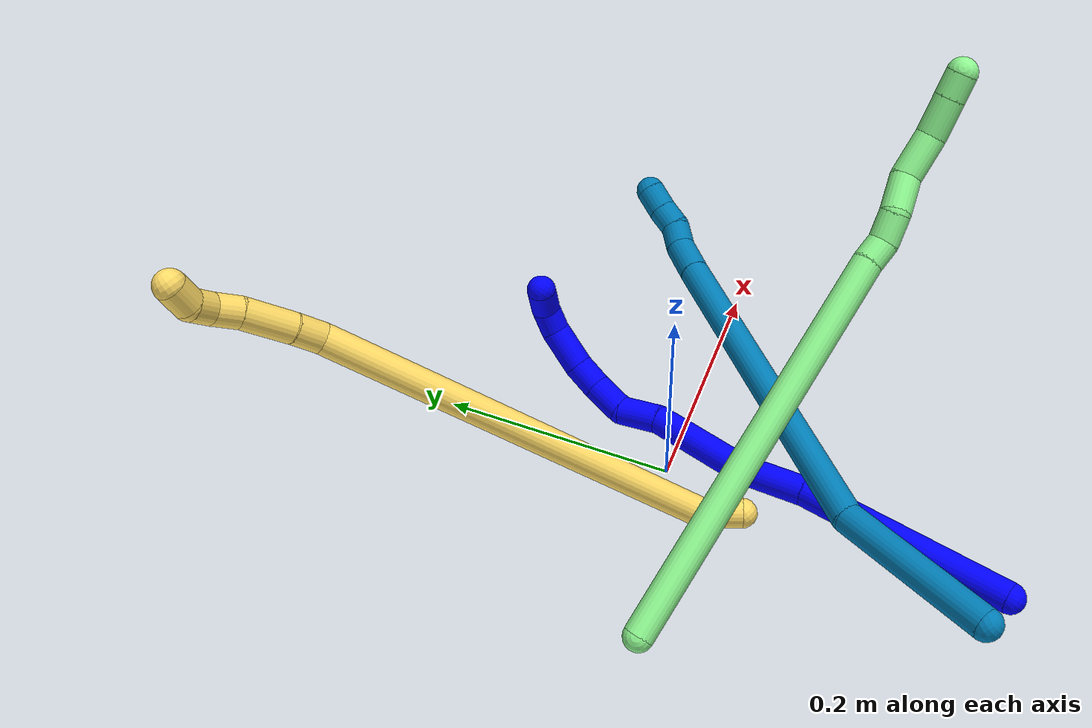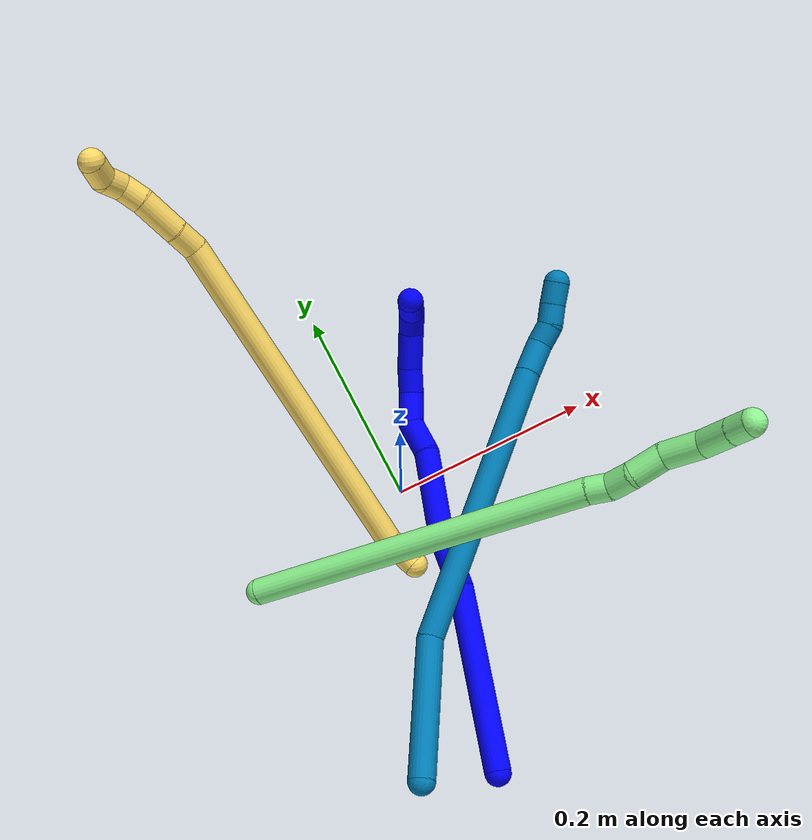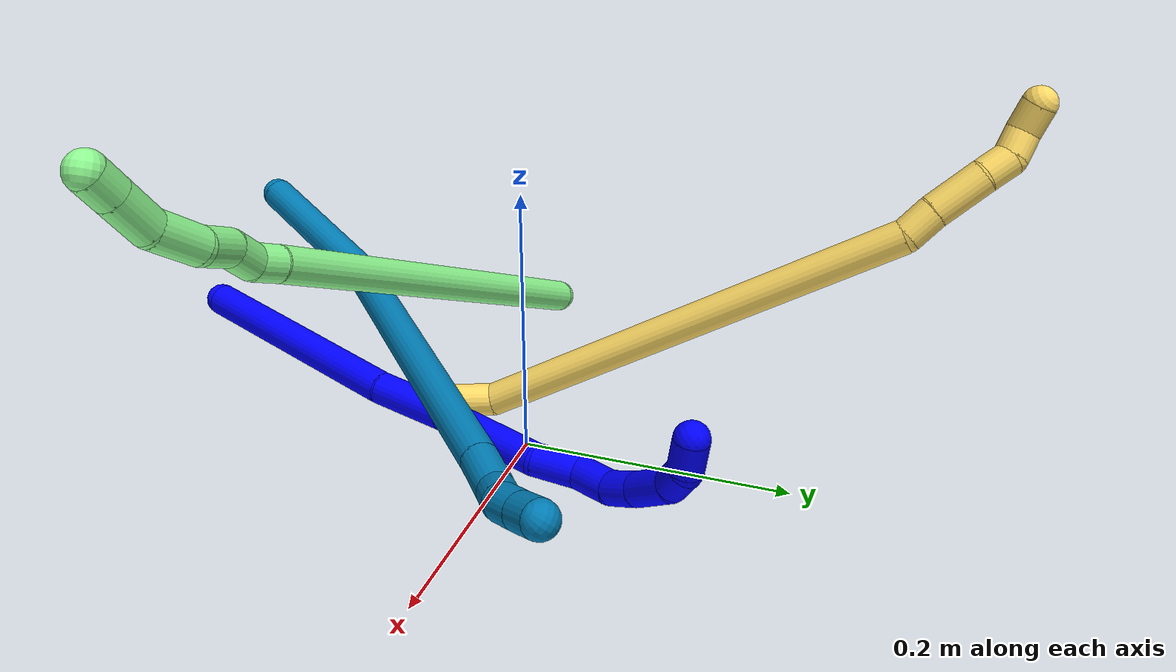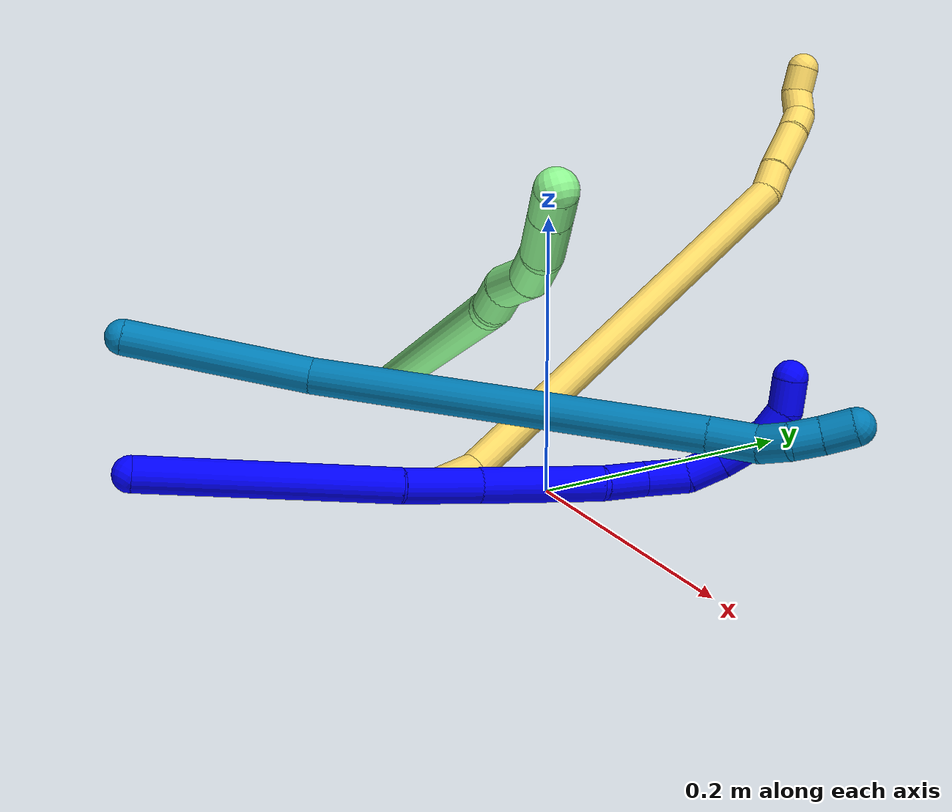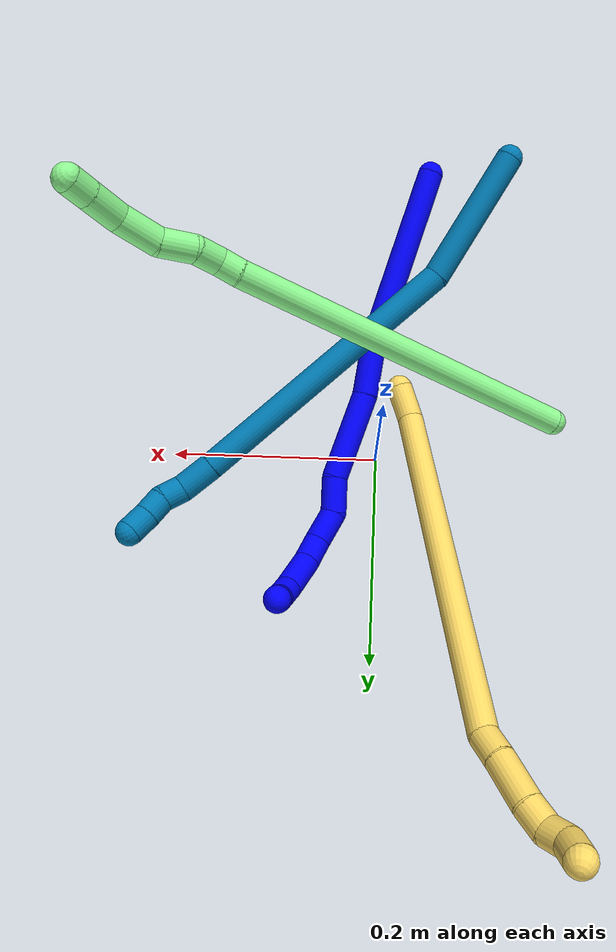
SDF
<sdf version="1.7">
 <world name="default">
  <model name="photoneo_s_sensor">
   <static>1</static>
   <pose>0 0 2 1.57079 1.57079 3.14159</pose>
   <link name="link">
    <inertial><mass>0.1</mass></inertial>
    <sensor name="sensor" type="depth">
     <update_rate>30</update_rate>
     <camera>
      <horizontal_fov>1.22</horizontal_fov>
      <image><width>1920</width><height>1200</height><format>B8G8R8</format></image>
      <clip><near>0.1</near><far>4</far></clip>
      <depth_camera><output>points</output></depth_camera>
     </camera>
     <plugin name="camera_plugin" filename="libgazebo_ros_depth_camera.so">
      <baseline>0.2</baseline>
      <alwaysOn>1</alwaysOn>
      <updateRate>0.0</updateRate>
      <cameraName>camera_ir</cameraName>
      <imageTopicName>/camera/color/image_raw</imageTopicName>
      <cameraInfoTopicName>/camera/color/camera_info</cameraInfoTopicName>
      <depthImageTopicName>/camera/depth/image_raw</depthImageTopicName>
      <depthImageCameraInfoTopicName>/camera/depth/camera_info</depthImageCameraInfoTopicName>
      <pointCloudTopicName>/camera/depth/points</pointCloudTopicName>
      <frameName>fr_optical</frameName>
      <pointCloudCutoff>0.1</pointCloudCutoff>
      <pointCloudCutoffMax>2.0</pointCloudCutoffMax>
      <distortionK1>0</distortionK1>
      <distortionK2>0</distortionK2>
      <distortionK3>0</distortionK3>
      <distortionT1>0</distortionT1>
      <distortionT2>0</distortionT2>
      <CxPrime>0</CxPrime>
      <Cx>0</Cx>
      <Cy>0</Cy>
      <focalLength>0</focalLength>
      <hackBaseline>0</hackBaseline>
     </plugin>
    </sensor>
   </link>
  </model>
  <model name="bin">
   <static>1</static>
   <link name="bottom">
    <collision name="collision-bottom">
     <pose>0 0 -0.01 0 -0 0</pose>
     <geometry><box><size>0.8 0.6 0.02</size></box></geometry>
     <surface>
      <friction><ode><mu>100</mu><mu2>100</mu2></ode></friction>
      <contact><collide_bitmask>65535</collide_bitmask></contact>
     </surface>
    </collision>
   </link>
   <link name="west_wall">
    <collision name="collision-west_wall">
     <pose>-0.41 0 0.1 0 -0 0</pose>
     <geometry><box><size>0.02 0.6 0.2</size></box></geometry>
     <surface>
      <friction><ode><mu>100</mu><mu2>100</mu2></ode></friction>
      <contact><collide_bitmask>65535</collide_bitmask></contact>
     </surface>
    </collision>
   </link>
   <link name="east_wall">
    <collision name="collision-east_wall">
     <pose>0.41 0 0.1 0 -0 0</pose>
     <geometry><box><size>0.02 0.6 0.2</size></box></geometry>
     <surface>
      <friction><ode><mu>100</mu><mu2>100</mu2></ode></friction>
      <contact><collide_bitmask>65535</collide_bitmask></contact>
     </surface>
    </collision>
   </link>
   <link name="south_wall">
    <collision name="collision-south_wall">
     <pose>0 -0.31 0.1 0 -0 0</pose>
     <geometry><box><size>0.8 0.02 0.2</size></box></geometry>
     <surface>
      <friction><ode><mu>100</mu><mu2>100</mu2></ode></friction>
      <contact><collide_bitmask>65535</collide_bitmask></contact>
     </surface>
    </collision>
   </link>
   <link name="north_wall">
    <collision name="collision-north_wall">
     <pose>0 0.31 0.1 0 -0 0</pose>
     <geometry><box><size>0.8 0.02 0.2</size></box></geometry>
     <surface>
      <friction><ode><mu>100</mu><mu2>100</mu2></ode></friction>
      <contact><collide_bitmask>65535</collide_bitmask></contact>
     </surface>
    </collision>
   </link>
  </model>
  <model name="1">
   <static>0</static>
   <link name="1">
    <collision name="collision-cylinder-e_1_1_4">
     <pose>0.020913 0.074035 -0.047108 -2.13747 0.233951 -0.421746</pose>
     <geometry><cylinder><radius>0.0125</radius><length>0.180419</length></cylinder></geometry>
     <surface>
      <friction><ode><mu>1.16</mu><mu2>1.16</mu2><slip1>0</slip1><slip2>0</slip2></ode></friction>
      <contact><ode><kp>1e+06</kp><kd>1</kd><max_vel>0</max_vel><min_depth>0.001</min_depth></ode></contact>
     </surface>
    </collision>
    <visual name="visual-cylinder-e_1_1_4">
     <pose>0.020913 0.074035 -0.047108 -2.13747 0.233951 -0.421746</pose>
     <geometry><cylinder><radius>0.0125</radius><length>0.180419</length></cylinder></geometry>
     <material><ambient>0 0 1 1</ambient></material>
    </visual>
    <collision name="collision-cylinder-e_2_4_5">
     <pose>0.051817 0.16908 -0.110499 -2.23011 0.359557 -0.71013</pose>
     <geometry><cylinder><radius>0.0125</radius><length>0.056792</length></cylinder></geometry>
     <surface>
      <friction><ode><mu>1.16</mu><mu2>1.16</mu2><slip1>0</slip1><slip2>0</slip2></ode></friction>
      <contact><ode><kp>1e+06</kp><kd>1</kd><max_vel>0</max_vel><min_depth>0.001</min_depth></ode></contact>
     </surface>
    </collision>
    <visual name="visual-cylinder-e_2_4_5">
     <pose>0.051817 0.16908 -0.110499 -2.23011 0.359557 -0.71013</pose>
     <geometry><cylinder><radius>0.0125</radius><length>0.056792</length></cylinder></geometry>
     <material><ambient>0 0 1 1</ambient></material>
    </visual>
    <collision name="collision-cylinder-e_3_5_6">
     <pose>0.069353 0.225449 -0.151511 -2.18111 0.173112 -0.330122</pose>
     <geometry><cylinder><radius>0.0125</radius><length>0.087609</length></cylinder></geometry>
     <surface>
      <friction><ode><mu>1.16</mu><mu2>1.16</mu2><slip1>0</slip1><slip2>0</slip2></ode></friction>
      <contact><ode><kp>1e+06</kp><kd>1</kd><max_vel>0</max_vel><min_depth>0.001</min_depth></ode></contact>
     </surface>
    </collision>
    <visual name="visual-cylinder-e_3_5_6">
     <pose>0.069353 0.225449 -0.151511 -2.18111 0.173112 -0.330122</pose>
     <geometry><cylinder><radius>0.0125</radius><length>0.087609</length></cylinder></geometry>
     <material><ambient>0 0 1 1</ambient></material>
    </visual>
    <collision name="collision-cylinder-e_4_6_7">
     <pose>0.084225 0.271859 -0.18739 -2.36069 0.436683 -0.988849</pose>
     <geometry><cylinder><radius>0.0125</radius><length>0.034646</length></cylinder></geometry>
     <surface>
      <friction><ode><mu>1.16</mu><mu2>1.16</mu2><slip1>0</slip1><slip2>0</slip2></ode></friction>
      <contact><ode><kp>1e+06</kp><kd>1</kd><max_vel>0</max_vel><min_depth>0.001</min_depth></ode></contact>
     </surface>
    </collision>
    <visual name="visual-cylinder-e_4_6_7">
     <pose>0.084225 0.271859 -0.18739 -2.36069 0.436683 -0.988849</pose>
     <geometry><cylinder><radius>0.0125</radius><length>0.034646</length></cylinder></geometry>
     <material><ambient>0 0 1 1</ambient></material>
    </visual>
    <collision name="collision-cylinder-e_5_7_8">
     <pose>0.090918 0.295934 -0.20763 -2.18011 -0.039903 0.076481</pose>
     <geometry><cylinder><radius>0.0125</radius><length>0.031793</length></cylinder></geometry>
     <surface>
      <friction><ode><mu>1.16</mu><mu2>1.16</mu2><slip1>0</slip1><slip2>0</slip2></ode></friction>
      <contact><ode><kp>1e+06</kp><kd>1</kd><max_vel>0</max_vel><min_depth>0.001</min_depth></ode></contact>
     </surface>
    </collision>
    <visual name="visual-cylinder-e_5_7_8">
     <pose>0.090918 0.295934 -0.20763 -2.18011 -0.039903 0.076481</pose>
     <geometry><cylinder><radius>0.0125</radius><length>0.031793</length></cylinder></geometry>
     <material><ambient>0 0 1 1</ambient></material>
    </visual>
    <collision name="collision-cylinder-e_6_8_9">
     <pose>0.087761 0.316705 -0.226557 -2.47457 -0.198856 0.560708</pose>
     <geometry><cylinder><radius>0.0125</radius><length>0.025543</length></cylinder></geometry>
     <surface>
      <friction><ode><mu>1.16</mu><mu2>1.16</mu2><slip1>0</slip1><slip2>0</slip2></ode></friction>
      <contact><ode><kp>1e+06</kp><kd>1</kd><max_vel>0</max_vel><min_depth>0.001</min_depth></ode></contact>
     </surface>
    </collision>
    <visual name="visual-cylinder-e_6_8_9">
     <pose>0.087761 0.316705 -0.226557 -2.47457 -0.198856 0.560708</pose>
     <geometry><cylinder><radius>0.0125</radius><length>0.025543</length></cylinder></geometry>
     <material><ambient>0 0 1 1</ambient></material>
    </visual>
    <collision name="collision-cylinder-e_7_9_10">
     <pose>0.078616 0.333956 -0.250869 -2.56055 -0.365191 1.10654</pose>
     <geometry><cylinder><radius>0.0125</radius><length>0.03708</length></cylinder></geometry>
     <surface>
      <friction><ode><mu>1.16</mu><mu2>1.16</mu2><slip1>0</slip1><slip2>0</slip2></ode></friction>
      <contact><ode><kp>1e+06</kp><kd>1</kd><max_vel>0</max_vel><min_depth>0.001</min_depth></ode></contact>
     </surface>
    </collision>
    <visual name="visual-cylinder-e_7_9_10">
     <pose>0.078616 0.333956 -0.250869 -2.56055 -0.365191 1.10654</pose>
     <geometry><cylinder><radius>0.0125</radius><length>0.03708</length></cylinder></geometry>
     <material><ambient>0 0 1 1</ambient></material>
    </visual>
    <collision name="collision-cylinder-e_8_10_11">
     <pose>0.06613 0.345325 -0.274194 -2.93399 -0.575356 2.46454</pose>
     <geometry><cylinder><radius>0.0125</radius><length>0.021558</length></cylinder></geometry>
     <surface>
      <friction><ode><mu>1.16</mu><mu2>1.16</mu2><slip1>0</slip1><slip2>0</slip2></ode></friction>
      <contact><ode><kp>1e+06</kp><kd>1</kd><max_vel>0</max_vel><min_depth>0.001</min_depth></ode></contact>
     </surface>
    </collision>
    <visual name="visual-cylinder-e_8_10_11">
     <pose>0.06613 0.345325 -0.274194 -2.93399 -0.575356 2.46454</pose>
     <geometry><cylinder><radius>0.0125</radius><length>0.021558</length></cylinder></geometry>
     <material><ambient>0 0 1 1</ambient></material>
    </visual>
    <collision name="collision-cylinder-e_9_11_2">
     <pose>0.053005 0.343314 -0.292157 2.73957 -0.63258 -2.02786</pose>
     <geometry><cylinder><radius>0.0125</radius><length>0.02456</length></cylinder></geometry>
     <surface>
      <friction><ode><mu>1.16</mu><mu2>1.16</mu2><slip1>0</slip1><slip2>0</slip2></ode></friction>
      <contact><ode><kp>1e+06</kp><kd>1</kd><max_vel>0</max_vel><min_depth>0.001</min_depth></ode></contact>
     </surface>
    </collision>
    <visual name="visual-cylinder-e_9_11_2">
     <pose>0.053005 0.343314 -0.292157 2.73957 -0.63258 -2.02786</pose>
     <geometry><cylinder><radius>0.0125</radius><length>0.02456</length></cylinder></geometry>
     <material><ambient>0 0 1 1</ambient></material>
    </visual>
    <collision name="collision-sphere-2">
     <pose>0.045744 0.339439 -0.301272 0 -0 0</pose>
     <geometry><sphere><radius>0.0125</radius></sphere></geometry>
     <surface>
      <friction><ode><mu>1.16</mu><mu2>1.16</mu2><slip1>0</slip1><slip2>0</slip2></ode></friction>
      <contact><ode><kp>1e+06</kp><kd>1</kd><max_vel>0</max_vel><min_depth>0.001</min_depth></ode></contact>
     </surface>
    </collision>
    <visual name="visual-sphere-2">
     <pose>0.045744 0.339439 -0.301272 0 -0 0</pose>
     <geometry><sphere><radius>0.0125</radius></sphere></geometry>
     <material><ambient>0 0 1 1</ambient></material>
    </visual>
    <collision name="collision-sphere-11">
     <pose>0.060265 0.347189 -0.283043 0 -0 0</pose>
     <geometry><sphere><radius>0.0125</radius></sphere></geometry>
     <surface>
      <friction><ode><mu>1.16</mu><mu2>1.16</mu2><slip1>0</slip1><slip2>0</slip2></ode></friction>
      <contact><ode><kp>1e+06</kp><kd>1</kd><max_vel>0</max_vel><min_depth>0.001</min_depth></ode></contact>
     </surface>
    </collision>
    <visual name="visual-sphere-11">
     <pose>0.060265 0.347189 -0.283043 0 -0 0</pose>
     <geometry><sphere><radius>0.0125</radius></sphere></geometry>
     <material><ambient>0 0 1 1</ambient></material>
    </visual>
    <collision name="collision-sphere-10">
     <pose>0.071995 0.343461 -0.265344 0 -0 0</pose>
     <geometry><sphere><radius>0.0125</radius></sphere></geometry>
     <surface>
      <friction><ode><mu>1.16</mu><mu2>1.16</mu2><slip1>0</slip1><slip2>0</slip2></ode></friction>
      <contact><ode><kp>1e+06</kp><kd>1</kd><max_vel>0</max_vel><min_depth>0.001</min_depth></ode></contact>
     </surface>
    </collision>
    <visual name="visual-sphere-10">
     <pose>0.071995 0.343461 -0.265344 0 -0 0</pose>
     <geometry><sphere><radius>0.0125</radius></sphere></geometry>
     <material><ambient>0 0 1 1</ambient></material>
    </visual>
    <collision name="collision-sphere-9">
     <pose>0.085238 0.32445 -0.236393 0 -0 0</pose>
     <geometry><sphere><radius>0.0125</radius></sphere></geometry>
     <surface>
      <friction><ode><mu>1.16</mu><mu2>1.16</mu2><slip1>0</slip1><slip2>0</slip2></ode></friction>
      <contact><ode><kp>1e+06</kp><kd>1</kd><max_vel>0</max_vel><min_depth>0.001</min_depth></ode></contact>
     </surface>
    </collision>
    <visual name="visual-sphere-9">
     <pose>0.085238 0.32445 -0.236393 0 -0 0</pose>
     <geometry><sphere><radius>0.0125</radius></sphere></geometry>
     <material><ambient>0 0 1 1</ambient></material>
    </visual>
    <collision name="collision-sphere-4">
     <pose>0.041825 0.148071 -0.094216 0 -0 0</pose>
     <geometry><sphere><radius>0.0125</radius></sphere></geometry>
     <surface>
      <friction><ode><mu>1.16</mu><mu2>1.16</mu2><slip1>0</slip1><slip2>0</slip2></ode></friction>
      <contact><ode><kp>1e+06</kp><kd>1</kd><max_vel>0</max_vel><min_depth>0.001</min_depth></ode></contact>
     </surface>
    </collision>
    <visual name="visual-sphere-4">
     <pose>0.041825 0.148071 -0.094216 0 -0 0</pose>
     <geometry><sphere><radius>0.0125</radius></sphere></geometry>
     <material><ambient>0 0 1 1</ambient></material>
    </visual>
    <collision name="collision-sphere-1">
     <geometry><sphere><radius>0.0125</radius></sphere></geometry>
     <surface>
      <friction><ode><mu>1.16</mu><mu2>1.16</mu2><slip1>0</slip1><slip2>0</slip2></ode></friction>
      <contact><ode><kp>1e+06</kp><kd>1</kd><max_vel>0</max_vel><min_depth>0.001</min_depth></ode></contact>
     </surface>
    </collision>
    <visual name="visual-sphere-1">
     <geometry><sphere><radius>0.0125</radius></sphere></geometry>
     <material><ambient>0 0 1 1</ambient></material>
    </visual>
    <collision name="collision-sphere-8">
     <pose>0.090283 0.30896 -0.216721 0 -0 0</pose>
     <geometry><sphere><radius>0.0125</radius></sphere></geometry>
     <surface>
      <friction><ode><mu>1.16</mu><mu2>1.16</mu2><slip1>0</slip1><slip2>0</slip2></ode></friction>
      <contact><ode><kp>1e+06</kp><kd>1</kd><max_vel>0</max_vel><min_depth>0.001</min_depth></ode></contact>
     </surface>
    </collision>
    <visual name="visual-sphere-8">
     <pose>0.090283 0.30896 -0.216721 0 -0 0</pose>
     <geometry><sphere><radius>0.0125</radius></sphere></geometry>
     <material><ambient>0 0 1 1</ambient></material>
    </visual>
    <collision name="collision-sphere-5">
     <pose>0.061808 0.19009 -0.126781 0 -0 0</pose>
     <geometry><sphere><radius>0.0125</radius></sphere></geometry>
     <surface>
      <friction><ode><mu>1.16</mu><mu2>1.16</mu2><slip1>0</slip1><slip2>0</slip2></ode></friction>
      <contact><ode><kp>1e+06</kp><kd>1</kd><max_vel>0</max_vel><min_depth>0.001</min_depth></ode></contact>
     </surface>
    </collision>
    <visual name="visual-sphere-5">
     <pose>0.061808 0.19009 -0.126781 0 -0 0</pose>
     <geometry><sphere><radius>0.0125</radius></sphere></geometry>
     <material><ambient>0 0 1 1</ambient></material>
    </visual>
    <collision name="collision-sphere-6">
     <pose>0.076899 0.260809 -0.176241 0 -0 0</pose>
     <geometry><sphere><radius>0.0125</radius></sphere></geometry>
     <surface>
      <friction><ode><mu>1.16</mu><mu2>1.16</mu2><slip1>0</slip1><slip2>0</slip2></ode></friction>
      <contact><ode><kp>1e+06</kp><kd>1</kd><max_vel>0</max_vel><min_depth>0.001</min_depth></ode></contact>
     </surface>
    </collision>
    <visual name="visual-sphere-6">
     <pose>0.076899 0.260809 -0.176241 0 -0 0</pose>
     <geometry><sphere><radius>0.0125</radius></sphere></geometry>
     <material><ambient>0 0 1 1</ambient></material>
    </visual>
    <collision name="collision-sphere-7">
     <pose>0.091552 0.282909 -0.19854 0 -0 0</pose>
     <geometry><sphere><radius>0.0125</radius></sphere></geometry>
     <surface>
      <friction><ode><mu>1.16</mu><mu2>1.16</mu2><slip1>0</slip1><slip2>0</slip2></ode></friction>
      <contact><ode><kp>1e+06</kp><kd>1</kd><max_vel>0</max_vel><min_depth>0.001</min_depth></ode></contact>
     </surface>
    </collision>
    <visual name="visual-sphere-7">
     <pose>0.091552 0.282909 -0.19854 0 -0 0</pose>
     <geometry><sphere><radius>0.0125</radius></sphere></geometry>
     <material><ambient>0 0 1 1</ambient></material>
    </visual>
    <inertial>
     <pose>0.052969 0.195775 -0.138635 0 -0 0</pose>
     <mass>0.5</mass>
     <inertia>
      <ixx>0.000295</ixx>
      <ixy>0</ixy>
      <ixz>0</ixz>
      <iyy>-0.000439</iyy>
      <iyz>0</iyz>
      <izz>-0.000631</izz>
     </inertia>
    </inertial>
   </link>
   <pose>-0.046843 -0.288503 0.053385 -2.59313 0.696119 2.65699</pose>
  </model>
  <model name="5">
   <static>0</static>
   <link name="5">
    <collision name="collision-cylinder-e_1_1_4">
     <pose>0.005775 0.013552 0.009584 -0.955265 0.33484 -0.174509</pose>
     <geometry><cylinder><radius>0.0125</radius><length>0.035149</length></cylinder></geometry>
     <surface>
      <friction><ode><mu>1.16</mu><mu2>1.16</mu2><slip1>0</slip1><slip2>0</slip2></ode></friction>
      <contact><ode><kp>1e+06</kp><kd>1</kd><max_vel>0</max_vel><min_depth>0.001</min_depth></ode></contact>
     </surface>
    </collision>
    <visual name="visual-cylinder-e_1_1_4">
     <pose>0.005775 0.013552 0.009584 -0.955265 0.33484 -0.174509</pose>
     <geometry><cylinder><radius>0.0125</radius><length>0.035149</length></cylinder></geometry>
     <material><ambient>1 0.858824 0.4 1</ambient></material>
    </visual>
    <collision name="collision-cylinder-e_2_4_5">
     <pose>0.023757 0.10857 0.165773 -0.507195 0.072651 -0.018837</pose>
     <geometry><cylinder><radius>0.0125</radius><length>0.336325</length></cylinder></geometry>
     <surface>
      <friction><ode><mu>1.16</mu><mu2>1.16</mu2><slip1>0</slip1><slip2>0</slip2></ode></friction>
      <contact><ode><kp>1e+06</kp><kd>1</kd><max_vel>0</max_vel><min_depth>0.001</min_depth></ode></contact>
     </surface>
    </collision>
    <visual name="visual-cylinder-e_2_4_5">
     <pose>0.023757 0.10857 0.165773 -0.507195 0.072651 -0.018837</pose>
     <geometry><cylinder><radius>0.0125</radius><length>0.336325</length></cylinder></geometry>
     <material><ambient>1 0.858824 0.4 1</ambient></material>
    </visual>
    <collision name="collision-cylinder-e_3_5_6">
     <pose>0.032212 0.19642 0.32211 -0.580571 -0.31177 0.093826</pose>
     <geometry><cylinder><radius>0.0125</radius><length>0.024458</length></cylinder></geometry>
     <surface>
      <friction><ode><mu>1.16</mu><mu2>1.16</mu2><slip1>0</slip1><slip2>0</slip2></ode></friction>
      <contact><ode><kp>1e+06</kp><kd>1</kd><max_vel>0</max_vel><min_depth>0.001</min_depth></ode></contact>
     </surface>
    </collision>
    <visual name="visual-cylinder-e_3_5_6">
     <pose>0.032212 0.19642 0.32211 -0.580571 -0.31177 0.093826</pose>
     <geometry><cylinder><radius>0.0125</radius><length>0.024458</length></cylinder></geometry>
     <material><ambient>1 0.858824 0.4 1</ambient></material>
    </visual>
    <collision name="collision-cylinder-e_4_6_7">
     <pose>0.024128 0.214593 0.347918 -0.632745 -0.214051 0.070313</pose>
     <geometry><cylinder><radius>0.0125</radius><length>0.040802</length></cylinder></geometry>
     <surface>
      <friction><ode><mu>1.16</mu><mu2>1.16</mu2><slip1>0</slip1><slip2>0</slip2></ode></friction>
      <contact><ode><kp>1e+06</kp><kd>1</kd><max_vel>0</max_vel><min_depth>0.001</min_depth></ode></contact>
     </surface>
    </collision>
    <visual name="visual-cylinder-e_4_6_7">
     <pose>0.024128 0.214593 0.347918 -0.632745 -0.214051 0.070313</pose>
     <geometry><cylinder><radius>0.0125</radius><length>0.040802</length></cylinder></geometry>
     <material><ambient>1 0.858824 0.4 1</ambient></material>
    </visual>
    <collision name="collision-cylinder-e_5_7_8">
     <pose>0.017345 0.233906 0.371385 -0.79431 -0.228176 0.096051</pose>
     <geometry><cylinder><radius>0.0125</radius><length>0.021652</length></cylinder></geometry>
     <surface>
      <friction><ode><mu>1.16</mu><mu2>1.16</mu2><slip1>0</slip1><slip2>0</slip2></ode></friction>
      <contact><ode><kp>1e+06</kp><kd>1</kd><max_vel>0</max_vel><min_depth>0.001</min_depth></ode></contact>
     </surface>
    </collision>
    <visual name="visual-cylinder-e_5_7_8">
     <pose>0.017345 0.233906 0.371385 -0.79431 -0.228176 0.096051</pose>
     <geometry><cylinder><radius>0.0125</radius><length>0.021652</length></cylinder></geometry>
     <material><ambient>1 0.858824 0.4 1</ambient></material>
    </visual>
    <collision name="collision-cylinder-e_6_8_9">
     <pose>0.008168 0.246129 0.384736 -0.667661 -0.725193 0.261636</pose>
     <geometry><cylinder><radius>0.0125</radius><length>0.020288</length></cylinder></geometry>
     <surface>
      <friction><ode><mu>1.16</mu><mu2>1.16</mu2><slip1>0</slip1><slip2>0</slip2></ode></friction>
      <contact><ode><kp>1e+06</kp><kd>1</kd><max_vel>0</max_vel><min_depth>0.001</min_depth></ode></contact>
     </surface>
    </collision>
    <visual name="visual-cylinder-e_6_8_9">
     <pose>0.008168 0.246129 0.384736 -0.667661 -0.725193 0.261636</pose>
     <geometry><cylinder><radius>0.0125</radius><length>0.020288</length></cylinder></geometry>
     <material><ambient>1 0.858824 0.4 1</ambient></material>
    </visual>
    <collision name="collision-cylinder-e_7_9_2">
     <pose>-0.003782 0.251834 0.399939 -0.108316 -0.511762 0.028363</pose>
     <geometry><cylinder><radius>0.0125</radius><length>0.021325</length></cylinder></geometry>
     <surface>
      <friction><ode><mu>1.16</mu><mu2>1.16</mu2><slip1>0</slip1><slip2>0</slip2></ode></friction>
      <contact><ode><kp>1e+06</kp><kd>1</kd><max_vel>0</max_vel><min_depth>0.001</min_depth></ode></contact>
     </surface>
    </collision>
    <visual name="visual-cylinder-e_7_9_2">
     <pose>-0.003782 0.251834 0.399939 -0.108316 -0.511762 0.028363</pose>
     <geometry><cylinder><radius>0.0125</radius><length>0.021325</length></cylinder></geometry>
     <material><ambient>1 0.858824 0.4 1</ambient></material>
    </visual>
    <collision name="collision-sphere-2">
     <pose>-0.009003 0.252839 0.409181 0 -0 0</pose>
     <geometry><sphere><radius>0.0125</radius></sphere></geometry>
     <surface>
      <friction><ode><mu>1.16</mu><mu2>1.16</mu2><slip1>0</slip1><slip2>0</slip2></ode></friction>
      <contact><ode><kp>1e+06</kp><kd>1</kd><max_vel>0</max_vel><min_depth>0.001</min_depth></ode></contact>
     </surface>
    </collision>
    <visual name="visual-sphere-2">
     <pose>-0.009003 0.252839 0.409181 0 -0 0</pose>
     <geometry><sphere><radius>0.0125</radius></sphere></geometry>
     <material><ambient>1 0.858824 0.4 1</ambient></material>
    </visual>
    <collision name="collision-sphere-9">
     <pose>0.00144 0.250829 0.390697 0 -0 0</pose>
     <geometry><sphere><radius>0.0125</radius></sphere></geometry>
     <surface>
      <friction><ode><mu>1.16</mu><mu2>1.16</mu2><slip1>0</slip1><slip2>0</slip2></ode></friction>
      <contact><ode><kp>1e+06</kp><kd>1</kd><max_vel>0</max_vel><min_depth>0.001</min_depth></ode></contact>
     </surface>
    </collision>
    <visual name="visual-sphere-9">
     <pose>0.00144 0.250829 0.390697 0 -0 0</pose>
     <geometry><sphere><radius>0.0125</radius></sphere></geometry>
     <material><ambient>1 0.858824 0.4 1</ambient></material>
    </visual>
    <collision name="collision-sphere-4">
     <pose>0.011551 0.027104 0.019168 0 -0 0</pose>
     <geometry><sphere><radius>0.0125</radius></sphere></geometry>
     <surface>
      <friction><ode><mu>1.16</mu><mu2>1.16</mu2><slip1>0</slip1><slip2>0</slip2></ode></friction>
      <contact><ode><kp>1e+06</kp><kd>1</kd><max_vel>0</max_vel><min_depth>0.001</min_depth></ode></contact>
     </surface>
    </collision>
    <visual name="visual-sphere-4">
     <pose>0.011551 0.027104 0.019168 0 -0 0</pose>
     <geometry><sphere><radius>0.0125</radius></sphere></geometry>
     <material><ambient>1 0.858824 0.4 1</ambient></material>
    </visual>
    <collision name="collision-sphere-1">
     <geometry><sphere><radius>0.0125</radius></sphere></geometry>
     <surface>
      <friction><ode><mu>1.16</mu><mu2>1.16</mu2><slip1>0</slip1><slip2>0</slip2></ode></friction>
      <contact><ode><kp>1e+06</kp><kd>1</kd><max_vel>0</max_vel><min_depth>0.001</min_depth></ode></contact>
     </surface>
    </collision>
    <visual name="visual-sphere-1">
     <geometry><sphere><radius>0.0125</radius></sphere></geometry>
     <material><ambient>1 0.858824 0.4 1</ambient></material>
    </visual>
    <collision name="collision-sphere-8">
     <pose>0.014896 0.241429 0.378775 0 -0 0</pose>
     <geometry><sphere><radius>0.0125</radius></sphere></geometry>
     <surface>
      <friction><ode><mu>1.16</mu><mu2>1.16</mu2><slip1>0</slip1><slip2>0</slip2></ode></friction>
      <contact><ode><kp>1e+06</kp><kd>1</kd><max_vel>0</max_vel><min_depth>0.001</min_depth></ode></contact>
     </surface>
    </collision>
    <visual name="visual-sphere-8">
     <pose>0.014896 0.241429 0.378775 0 -0 0</pose>
     <geometry><sphere><radius>0.0125</radius></sphere></geometry>
     <material><ambient>1 0.858824 0.4 1</ambient></material>
    </visual>
    <collision name="collision-sphere-5">
     <pose>0.035964 0.190036 0.312378 0 -0 0</pose>
     <geometry><sphere><radius>0.0125</radius></sphere></geometry>
     <surface>
      <friction><ode><mu>1.16</mu><mu2>1.16</mu2><slip1>0</slip1><slip2>0</slip2></ode></friction>
      <contact><ode><kp>1e+06</kp><kd>1</kd><max_vel>0</max_vel><min_depth>0.001</min_depth></ode></contact>
     </surface>
    </collision>
    <visual name="visual-sphere-5">
     <pose>0.035964 0.190036 0.312378 0 -0 0</pose>
     <geometry><sphere><radius>0.0125</radius></sphere></geometry>
     <material><ambient>1 0.858824 0.4 1</ambient></material>
    </visual>
    <collision name="collision-sphere-6">
     <pose>0.028461 0.202804 0.331842 0 -0 0</pose>
     <geometry><sphere><radius>0.0125</radius></sphere></geometry>
     <surface>
      <friction><ode><mu>1.16</mu><mu2>1.16</mu2><slip1>0</slip1><slip2>0</slip2></ode></friction>
      <contact><ode><kp>1e+06</kp><kd>1</kd><max_vel>0</max_vel><min_depth>0.001</min_depth></ode></contact>
     </surface>
    </collision>
    <visual name="visual-sphere-6">
     <pose>0.028461 0.202804 0.331842 0 -0 0</pose>
     <geometry><sphere><radius>0.0125</radius></sphere></geometry>
     <material><ambient>1 0.858824 0.4 1</ambient></material>
    </visual>
    <collision name="collision-sphere-7">
     <pose>0.019794 0.226383 0.363994 0 -0 0</pose>
     <geometry><sphere><radius>0.0125</radius></sphere></geometry>
     <surface>
      <friction><ode><mu>1.16</mu><mu2>1.16</mu2><slip1>0</slip1><slip2>0</slip2></ode></friction>
      <contact><ode><kp>1e+06</kp><kd>1</kd><max_vel>0</max_vel><min_depth>0.001</min_depth></ode></contact>
     </surface>
    </collision>
    <visual name="visual-sphere-7">
     <pose>0.019794 0.226383 0.363994 0 -0 0</pose>
     <geometry><sphere><radius>0.0125</radius></sphere></geometry>
     <material><ambient>1 0.858824 0.4 1</ambient></material>
    </visual>
    <inertial>
     <pose>0.020852 0.131959 0.20508 0 -0 0</pose>
     <mass>0.5</mass>
     <inertia>
      <ixx>0.003132</ixx>
      <ixy>0</ixy>
      <ixz>0</ixz>
      <iyy>0.00276</iyy>
      <iyz>0</iyz>
      <izz>-0.00175</izz>
     </inertia>
    </inertial>
   </link>
   <pose>-0.022463 -0.073971 0.011481 -0.283856 0.730538 0.803465</pose>
  </model>
  <model name="9">
   <static>0</static>
   <link name="9">
    <collision name="collision-cylinder-e_1_1_4">
     <pose>0.016096 0.054812 -0.031605 -2.09383 0.24911 -0.426835</pose>
     <geometry><cylinder><radius>0.0125</radius><length>0.130573</length></cylinder></geometry>
     <surface>
      <friction><ode><mu>1.16</mu><mu2>1.16</mu2><slip1>0</slip1><slip2>0</slip2></ode></friction>
      <contact><ode><kp>1e+06</kp><kd>1</kd><max_vel>0</max_vel><min_depth>0.001</min_depth></ode></contact>
     </surface>
    </collision>
    <visual name="visual-cylinder-e_1_1_4">
     <pose>0.016096 0.054812 -0.031605 -2.09383 0.24911 -0.426835</pose>
     <geometry><cylinder><radius>0.0125</radius><length>0.130573</length></cylinder></geometry>
     <material><ambient>0 0.490196 0.709804 1</ambient></material>
    </visual>
    <collision name="collision-cylinder-e_2_4_5">
     <pose>0.078945 0.235865 -0.088191 -1.76616 0.348479 -0.422158</pose>
     <geometry><cylinder><radius>0.0125</radius><length>0.273836</length></cylinder></geometry>
     <surface>
      <friction><ode><mu>1.16</mu><mu2>1.16</mu2><slip1>0</slip1><slip2>0</slip2></ode></friction>
      <contact><ode><kp>1e+06</kp><kd>1</kd><max_vel>0</max_vel><min_depth>0.001</min_depth></ode></contact>
     </surface>
    </collision>
    <visual name="visual-cylinder-e_2_4_5">
     <pose>0.078945 0.235865 -0.088191 -1.76616 0.348479 -0.422158</pose>
     <geometry><cylinder><radius>0.0125</radius><length>0.273836</length></cylinder></geometry>
     <material><ambient>0 0.490196 0.709804 1</ambient></material>
    </visual>
    <collision name="collision-cylinder-e_3_5_6">
     <pose>0.131863 0.377188 -0.115738 -1.73931 0.383045 -0.451516</pose>
     <geometry><cylinder><radius>0.0125</radius><length>0.032991</length></cylinder></geometry>
     <surface>
      <friction><ode><mu>1.16</mu><mu2>1.16</mu2><slip1>0</slip1><slip2>0</slip2></ode></friction>
      <contact><ode><kp>1e+06</kp><kd>1</kd><max_vel>0</max_vel><min_depth>0.001</min_depth></ode></contact>
     </surface>
    </collision>
    <visual name="visual-cylinder-e_3_5_6">
     <pose>0.131863 0.377188 -0.115738 -1.73931 0.383045 -0.451516</pose>
     <geometry><cylinder><radius>0.0125</radius><length>0.032991</length></cylinder></geometry>
     <material><ambient>0 0.490196 0.709804 1</ambient></material>
    </visual>
    <collision name="collision-cylinder-e_4_6_7">
     <pose>0.140475 0.402237 -0.116777 -1.41866 0.238062 -0.204597</pose>
     <geometry><cylinder><radius>0.0125</radius><length>0.02075</length></cylinder></geometry>
     <surface>
      <friction><ode><mu>1.16</mu><mu2>1.16</mu2><slip1>0</slip1><slip2>0</slip2></ode></friction>
      <contact><ode><kp>1e+06</kp><kd>1</kd><max_vel>0</max_vel><min_depth>0.001</min_depth></ode></contact>
     </surface>
    </collision>
    <visual name="visual-cylinder-e_4_6_7">
     <pose>0.140475 0.402237 -0.116777 -1.41866 0.238062 -0.204597</pose>
     <geometry><cylinder><radius>0.0125</radius><length>0.02075</length></cylinder></geometry>
     <material><ambient>0 0.490196 0.709804 1</ambient></material>
    </visual>
    <collision name="collision-cylinder-e_5_7_8">
     <pose>0.14292 0.422122 -0.116756 -1.72159 -9.5e-05 0.000111</pose>
     <geometry><cylinder><radius>0.0125</radius><length>0.020066</length></cylinder></geometry>
     <surface>
      <friction><ode><mu>1.16</mu><mu2>1.16</mu2><slip1>0</slip1><slip2>0</slip2></ode></friction>
      <contact><ode><kp>1e+06</kp><kd>1</kd><max_vel>0</max_vel><min_depth>0.001</min_depth></ode></contact>
     </surface>
    </collision>
    <visual name="visual-cylinder-e_5_7_8">
     <pose>0.14292 0.422122 -0.116756 -1.72159 -9.5e-05 0.000111</pose>
     <geometry><cylinder><radius>0.0125</radius><length>0.020066</length></cylinder></geometry>
     <material><ambient>0 0.490196 0.709804 1</ambient></material>
    </visual>
    <collision name="collision-cylinder-e_6_8_2">
     <pose>0.142648 0.44292 -0.118724 -1.61314 -0.024902 0.025979</pose>
     <geometry><cylinder><radius>0.0125</radius><length>0.021785</length></cylinder></geometry>
     <surface>
      <friction><ode><mu>1.16</mu><mu2>1.16</mu2><slip1>0</slip1><slip2>0</slip2></ode></friction>
      <contact><ode><kp>1e+06</kp><kd>1</kd><max_vel>0</max_vel><min_depth>0.001</min_depth></ode></contact>
     </surface>
    </collision>
    <visual name="visual-cylinder-e_6_8_2">
     <pose>0.142648 0.44292 -0.118724 -1.61314 -0.024902 0.025979</pose>
     <geometry><cylinder><radius>0.0125</radius><length>0.021785</length></cylinder></geometry>
     <material><ambient>0 0.490196 0.709804 1</ambient></material>
    </visual>
    <collision name="collision-sphere-2">
     <pose>0.142377 0.4538 -0.119185 0 -0 0</pose>
     <geometry><sphere><radius>0.0125</radius></sphere></geometry>
     <surface>
      <friction><ode><mu>1.16</mu><mu2>1.16</mu2><slip1>0</slip1><slip2>0</slip2></ode></friction>
      <contact><ode><kp>1e+06</kp><kd>1</kd><max_vel>0</max_vel><min_depth>0.001</min_depth></ode></contact>
     </surface>
    </collision>
    <visual name="visual-sphere-2">
     <pose>0.142377 0.4538 -0.119185 0 -0 0</pose>
     <geometry><sphere><radius>0.0125</radius></sphere></geometry>
     <material><ambient>0 0.490196 0.709804 1</ambient></material>
    </visual>
    <collision name="collision-sphere-4">
     <pose>0.032192 0.109625 -0.06321 0 -0 0</pose>
     <geometry><sphere><radius>0.0125</radius></sphere></geometry>
     <surface>
      <friction><ode><mu>1.16</mu><mu2>1.16</mu2><slip1>0</slip1><slip2>0</slip2></ode></friction>
      <contact><ode><kp>1e+06</kp><kd>1</kd><max_vel>0</max_vel><min_depth>0.001</min_depth></ode></contact>
     </surface>
    </collision>
    <visual name="visual-sphere-4">
     <pose>0.032192 0.109625 -0.06321 0 -0 0</pose>
     <geometry><sphere><radius>0.0125</radius></sphere></geometry>
     <material><ambient>0 0.490196 0.709804 1</ambient></material>
    </visual>
    <collision name="collision-sphere-1">
     <geometry><sphere><radius>0.0125</radius></sphere></geometry>
     <surface>
      <friction><ode><mu>1.16</mu><mu2>1.16</mu2><slip1>0</slip1><slip2>0</slip2></ode></friction>
      <contact><ode><kp>1e+06</kp><kd>1</kd><max_vel>0</max_vel><min_depth>0.001</min_depth></ode></contact>
     </surface>
    </collision>
    <visual name="visual-sphere-1">
     <geometry><sphere><radius>0.0125</radius></sphere></geometry>
     <material><ambient>0 0.490196 0.709804 1</ambient></material>
    </visual>
    <collision name="collision-sphere-8">
     <pose>0.142919 0.432041 -0.118263 0 -0 0</pose>
     <geometry><sphere><radius>0.0125</radius></sphere></geometry>
     <surface>
      <friction><ode><mu>1.16</mu><mu2>1.16</mu2><slip1>0</slip1><slip2>0</slip2></ode></friction>
      <contact><ode><kp>1e+06</kp><kd>1</kd><max_vel>0</max_vel><min_depth>0.001</min_depth></ode></contact>
     </surface>
    </collision>
    <visual name="visual-sphere-8">
     <pose>0.142919 0.432041 -0.118263 0 -0 0</pose>
     <geometry><sphere><radius>0.0125</radius></sphere></geometry>
     <material><ambient>0 0.490196 0.709804 1</ambient></material>
    </visual>
    <collision name="collision-sphere-5">
     <pose>0.125698 0.362105 -0.113172 0 -0 0</pose>
     <geometry><sphere><radius>0.0125</radius></sphere></geometry>
     <surface>
      <friction><ode><mu>1.16</mu><mu2>1.16</mu2><slip1>0</slip1><slip2>0</slip2></ode></friction>
      <contact><ode><kp>1e+06</kp><kd>1</kd><max_vel>0</max_vel><min_depth>0.001</min_depth></ode></contact>
     </surface>
    </collision>
    <visual name="visual-sphere-5">
     <pose>0.125698 0.362105 -0.113172 0 -0 0</pose>
     <geometry><sphere><radius>0.0125</radius></sphere></geometry>
     <material><ambient>0 0.490196 0.709804 1</ambient></material>
    </visual>
    <collision name="collision-sphere-6">
     <pose>0.138028 0.392272 -0.118305 0 -0 0</pose>
     <geometry><sphere><radius>0.0125</radius></sphere></geometry>
     <surface>
      <friction><ode><mu>1.16</mu><mu2>1.16</mu2><slip1>0</slip1><slip2>0</slip2></ode></friction>
      <contact><ode><kp>1e+06</kp><kd>1</kd><max_vel>0</max_vel><min_depth>0.001</min_depth></ode></contact>
     </surface>
    </collision>
    <visual name="visual-sphere-6">
     <pose>0.138028 0.392272 -0.118305 0 -0 0</pose>
     <geometry><sphere><radius>0.0125</radius></sphere></geometry>
     <material><ambient>0 0.490196 0.709804 1</ambient></material>
    </visual>
    <collision name="collision-sphere-7">
     <pose>0.142921 0.412203 -0.115249 0 -0 0</pose>
     <geometry><sphere><radius>0.0125</radius></sphere></geometry>
     <surface>
      <friction><ode><mu>1.16</mu><mu2>1.16</mu2><slip1>0</slip1><slip2>0</slip2></ode></friction>
      <contact><ode><kp>1e+06</kp><kd>1</kd><max_vel>0</max_vel><min_depth>0.001</min_depth></ode></contact>
     </surface>
    </collision>
    <visual name="visual-sphere-7">
     <pose>0.142921 0.412203 -0.115249 0 -0 0</pose>
     <geometry><sphere><radius>0.0125</radius></sphere></geometry>
     <material><ambient>0 0.490196 0.709804 1</ambient></material>
    </visual>
    <inertial>
     <pose>0.07392 0.221309 -0.078894 0 -0 0</pose>
     <mass>0.5</mass>
     <inertia>
      <ixx>0.000922</ixx>
      <ixy>0</ixy>
      <ixz>0</ixz>
      <iyy>-0.000844</iyy>
      <iyz>0</iyz>
      <izz>-0.002402</izz>
     </inertia>
    </inertial>
   </link>
   <pose>-0.114568 -0.266985 0.124879 0.467824 0.740958 -0.383372</pose>
  </model>
  <model name="13">
   <static>0</static>
   <link name="13">
    <collision name="collision-cylinder-e_1_1_4">
     <pose>0.162858 -0.038815 -0.011792 1.86574 1.32667 1.6235</pose>
     <geometry><cylinder><radius>0.0125</radius><length>0.335669</length></cylinder></geometry>
     <surface>
      <friction><ode><mu>1.16</mu><mu2>1.16</mu2><slip1>0</slip1><slip2>0</slip2></ode></friction>
      <contact><ode><kp>1e+06</kp><kd>1</kd><max_vel>0</max_vel><min_depth>0.001</min_depth></ode></contact>
     </surface>
    </collision>
    <visual name="visual-cylinder-e_1_1_4">
     <pose>0.162858 -0.038815 -0.011792 1.86574 1.32667 1.6235</pose>
     <geometry><cylinder><radius>0.0125</radius><length>0.335669</length></cylinder></geometry>
     <material><ambient>0.564706 0.984314 0.572549 1</ambient></material>
    </visual>
    <collision name="collision-cylinder-e_2_4_5">
     <pose>0.335202 -0.081044 -0.0246 1.85991 1.2116 1.49691</pose>
     <geometry><cylinder><radius>0.0125</radius><length>0.020264</length></cylinder></geometry>
     <surface>
      <friction><ode><mu>1.16</mu><mu2>1.16</mu2><slip1>0</slip1><slip2>0</slip2></ode></friction>
      <contact><ode><kp>1e+06</kp><kd>1</kd><max_vel>0</max_vel><min_depth>0.001</min_depth></ode></contact>
     </surface>
    </collision>
    <visual name="visual-cylinder-e_2_4_5">
     <pose>0.335202 -0.081044 -0.0246 1.85991 1.2116 1.49691</pose>
     <geometry><cylinder><radius>0.0125</radius><length>0.020264</length></cylinder></geometry>
     <material><ambient>0.564706 0.984314 0.572549 1</ambient></material>
    </visual>
    <collision name="collision-cylinder-e_3_5_6">
     <pose>0.356504 -0.085443 -0.02304 0.365273 1.34157 0.291049</pose>
     <geometry><cylinder><radius>0.0125</radius><length>0.024268</length></cylinder></geometry>
     <surface>
      <friction><ode><mu>1.16</mu><mu2>1.16</mu2><slip1>0</slip1><slip2>0</slip2></ode></friction>
      <contact><ode><kp>1e+06</kp><kd>1</kd><max_vel>0</max_vel><min_depth>0.001</min_depth></ode></contact>
     </surface>
    </collision>
    <visual name="visual-cylinder-e_3_5_6">
     <pose>0.356504 -0.085443 -0.02304 0.365273 1.34157 0.291049</pose>
     <geometry><cylinder><radius>0.0125</radius><length>0.024268</length></cylinder></geometry>
     <material><ambient>0.564706 0.984314 0.572549 1</ambient></material>
    </visual>
    <collision name="collision-cylinder-e_4_6_7">
     <pose>0.383577 -0.086038 -0.022185 -2.91904 1.45566 -2.89209</pose>
     <geometry><cylinder><radius>0.0125</radius><length>0.030715</length></cylinder></geometry>
     <surface>
      <friction><ode><mu>1.16</mu><mu2>1.16</mu2><slip1>0</slip1><slip2>0</slip2></ode></friction>
      <contact><ode><kp>1e+06</kp><kd>1</kd><max_vel>0</max_vel><min_depth>0.001</min_depth></ode></contact>
     </surface>
    </collision>
    <visual name="visual-cylinder-e_4_6_7">
     <pose>0.383577 -0.086038 -0.022185 -2.91904 1.45566 -2.89209</pose>
     <geometry><cylinder><radius>0.0125</radius><length>0.030715</length></cylinder></geometry>
     <material><ambient>0.564706 0.984314 0.572549 1</ambient></material>
    </visual>
    <collision name="collision-cylinder-e_5_7_8">
     <pose>0.416562 -0.090156 -0.021873 1.14709 1.29884 0.912012</pose>
     <geometry><cylinder><radius>0.0125</radius><length>0.036812</length></cylinder></geometry>
     <surface>
      <friction><ode><mu>1.16</mu><mu2>1.16</mu2><slip1>0</slip1><slip2>0</slip2></ode></friction>
      <contact><ode><kp>1e+06</kp><kd>1</kd><max_vel>0</max_vel><min_depth>0.001</min_depth></ode></contact>
     </surface>
    </collision>
    <visual name="visual-cylinder-e_5_7_8">
     <pose>0.416562 -0.090156 -0.021873 1.14709 1.29884 0.912012</pose>
     <geometry><cylinder><radius>0.0125</radius><length>0.036812</length></cylinder></geometry>
     <material><ambient>0.564706 0.984314 0.572549 1</ambient></material>
    </visual>
    <collision name="collision-cylinder-e_6_8_9">
     <pose>0.448675 -0.097094 -0.01333 0.357348 1.12069 0.225667</pose>
     <geometry><cylinder><radius>0.0125</radius><length>0.031948</length></cylinder></geometry>
     <surface>
      <friction><ode><mu>1.16</mu><mu2>1.16</mu2><slip1>0</slip1><slip2>0</slip2></ode></friction>
      <contact><ode><kp>1e+06</kp><kd>1</kd><max_vel>0</max_vel><min_depth>0.001</min_depth></ode></contact>
     </surface>
    </collision>
    <visual name="visual-cylinder-e_6_8_9">
     <pose>0.448675 -0.097094 -0.01333 0.357348 1.12069 0.225667</pose>
     <geometry><cylinder><radius>0.0125</radius><length>0.031948</length></cylinder></geometry>
     <material><ambient>0.564706 0.984314 0.572549 1</ambient></material>
    </visual>
    <collision name="collision-cylinder-e_7_9_2">
     <pose>0.472207 -0.101079 -0.002681 0.359197 1.12076 0.226865</pose>
     <geometry><cylinder><radius>0.0125</radius><length>0.020323</length></cylinder></geometry>
     <surface>
      <friction><ode><mu>1.16</mu><mu2>1.16</mu2><slip1>0</slip1><slip2>0</slip2></ode></friction>
      <contact><ode><kp>1e+06</kp><kd>1</kd><max_vel>0</max_vel><min_depth>0.001</min_depth></ode></contact>
     </surface>
    </collision>
    <visual name="visual-cylinder-e_7_9_2">
     <pose>0.472207 -0.101079 -0.002681 0.359197 1.12076 0.226865</pose>
     <geometry><cylinder><radius>0.0125</radius><length>0.020323</length></cylinder></geometry>
     <material><ambient>0.564706 0.984314 0.572549 1</ambient></material>
    </visual>
    <collision name="collision-sphere-2">
     <pose>0.481357 -0.102632 0.001457 0 -0 0</pose>
     <geometry><sphere><radius>0.0125</radius></sphere></geometry>
     <surface>
      <friction><ode><mu>1.16</mu><mu2>1.16</mu2><slip1>0</slip1><slip2>0</slip2></ode></friction>
      <contact><ode><kp>1e+06</kp><kd>1</kd><max_vel>0</max_vel><min_depth>0.001</min_depth></ode></contact>
     </surface>
    </collision>
    <visual name="visual-sphere-2">
     <pose>0.481357 -0.102632 0.001457 0 -0 0</pose>
     <geometry><sphere><radius>0.0125</radius></sphere></geometry>
     <material><ambient>0.564706 0.984314 0.572549 1</ambient></material>
    </visual>
    <collision name="collision-sphere-9">
     <pose>0.463058 -0.099525 -0.00682 0 -0 0</pose>
     <geometry><sphere><radius>0.0125</radius></sphere></geometry>
     <surface>
      <friction><ode><mu>1.16</mu><mu2>1.16</mu2><slip1>0</slip1><slip2>0</slip2></ode></friction>
      <contact><ode><kp>1e+06</kp><kd>1</kd><max_vel>0</max_vel><min_depth>0.001</min_depth></ode></contact>
     </surface>
    </collision>
    <visual name="visual-sphere-9">
     <pose>0.463058 -0.099525 -0.00682 0 -0 0</pose>
     <geometry><sphere><radius>0.0125</radius></sphere></geometry>
     <material><ambient>0.564706 0.984314 0.572549 1</ambient></material>
    </visual>
    <collision name="collision-sphere-4">
     <pose>0.325716 -0.07763 -0.023584 0 -0 0</pose>
     <geometry><sphere><radius>0.0125</radius></sphere></geometry>
     <surface>
      <friction><ode><mu>1.16</mu><mu2>1.16</mu2><slip1>0</slip1><slip2>0</slip2></ode></friction>
      <contact><ode><kp>1e+06</kp><kd>1</kd><max_vel>0</max_vel><min_depth>0.001</min_depth></ode></contact>
     </surface>
    </collision>
    <visual name="visual-sphere-4">
     <pose>0.325716 -0.07763 -0.023584 0 -0 0</pose>
     <geometry><sphere><radius>0.0125</radius></sphere></geometry>
     <material><ambient>0.564706 0.984314 0.572549 1</ambient></material>
    </visual>
    <collision name="collision-sphere-1">
     <geometry><sphere><radius>0.0125</radius></sphere></geometry>
     <surface>
      <friction><ode><mu>1.16</mu><mu2>1.16</mu2><slip1>0</slip1><slip2>0</slip2></ode></friction>
      <contact><ode><kp>1e+06</kp><kd>1</kd><max_vel>0</max_vel><min_depth>0.001</min_depth></ode></contact>
     </surface>
    </collision>
    <visual name="visual-sphere-1">
     <geometry><sphere><radius>0.0125</radius></sphere></geometry>
     <material><ambient>0.564706 0.984314 0.572549 1</ambient></material>
    </visual>
    <collision name="collision-sphere-8">
     <pose>0.434292 -0.094663 -0.019841 0 -0 0</pose>
     <geometry><sphere><radius>0.0125</radius></sphere></geometry>
     <surface>
      <friction><ode><mu>1.16</mu><mu2>1.16</mu2><slip1>0</slip1><slip2>0</slip2></ode></friction>
      <contact><ode><kp>1e+06</kp><kd>1</kd><max_vel>0</max_vel><min_depth>0.001</min_depth></ode></contact>
     </surface>
    </collision>
    <visual name="visual-sphere-8">
     <pose>0.434292 -0.094663 -0.019841 0 -0 0</pose>
     <geometry><sphere><radius>0.0125</radius></sphere></geometry>
     <material><ambient>0.564706 0.984314 0.572549 1</ambient></material>
    </visual>
    <collision name="collision-sphere-5">
     <pose>0.344687 -0.084458 -0.025615 0 -0 0</pose>
     <geometry><sphere><radius>0.0125</radius></sphere></geometry>
     <surface>
      <friction><ode><mu>1.16</mu><mu2>1.16</mu2><slip1>0</slip1><slip2>0</slip2></ode></friction>
      <contact><ode><kp>1e+06</kp><kd>1</kd><max_vel>0</max_vel><min_depth>0.001</min_depth></ode></contact>
     </surface>
    </collision>
    <visual name="visual-sphere-5">
     <pose>0.344687 -0.084458 -0.025615 0 -0 0</pose>
     <geometry><sphere><radius>0.0125</radius></sphere></geometry>
     <material><ambient>0.564706 0.984314 0.572549 1</ambient></material>
    </visual>
    <collision name="collision-sphere-6">
     <pose>0.368321 -0.086428 -0.020465 0 -0 0</pose>
     <geometry><sphere><radius>0.0125</radius></sphere></geometry>
     <surface>
      <friction><ode><mu>1.16</mu><mu2>1.16</mu2><slip1>0</slip1><slip2>0</slip2></ode></friction>
      <contact><ode><kp>1e+06</kp><kd>1</kd><max_vel>0</max_vel><min_depth>0.001</min_depth></ode></contact>
     </surface>
    </collision>
    <visual name="visual-sphere-6">
     <pose>0.368321 -0.086428 -0.020465 0 -0 0</pose>
     <geometry><sphere><radius>0.0125</radius></sphere></geometry>
     <material><ambient>0.564706 0.984314 0.572549 1</ambient></material>
    </visual>
    <collision name="collision-sphere-7">
     <pose>0.398833 -0.085649 -0.023906 0 -0 0</pose>
     <geometry><sphere><radius>0.0125</radius></sphere></geometry>
     <surface>
      <friction><ode><mu>1.16</mu><mu2>1.16</mu2><slip1>0</slip1><slip2>0</slip2></ode></friction>
      <contact><ode><kp>1e+06</kp><kd>1</kd><max_vel>0</max_vel><min_depth>0.001</min_depth></ode></contact>
     </surface>
    </collision>
    <visual name="visual-sphere-7">
     <pose>0.398833 -0.085649 -0.023906 0 -0 0</pose>
     <geometry><sphere><radius>0.0125</radius></sphere></geometry>
     <material><ambient>0.564706 0.984314 0.572549 1</ambient></material>
    </visual>
    <inertial>
     <pose>0.242316 -0.055725 -0.013966 0 -0 0</pose>
     <mass>0.5</mass>
     <inertia>
      <ixx>0.000767</ixx>
      <ixy>0</ixy>
      <ixz>0</ixz>
      <iyy>0.003759</iyy>
      <iyz>0</iyz>
      <izz>-0.002354</izz>
     </inertia>
    </inertial>
   </link>
   <pose>-0.169182 -0.035695 0.040686 0.049997 -0.540143 -0.012314</pose>
  </model>
 </world>
</sdf>
